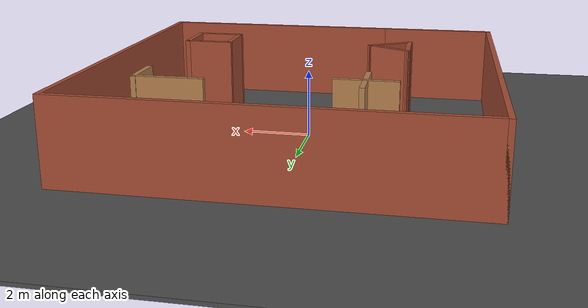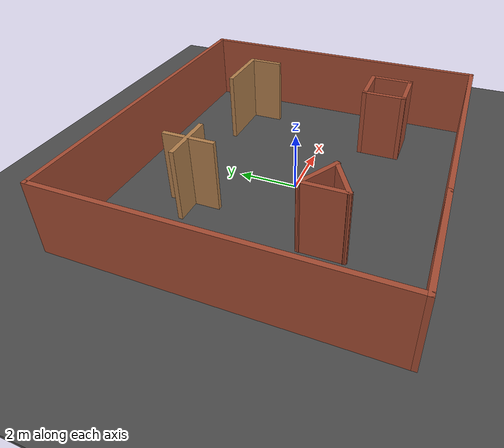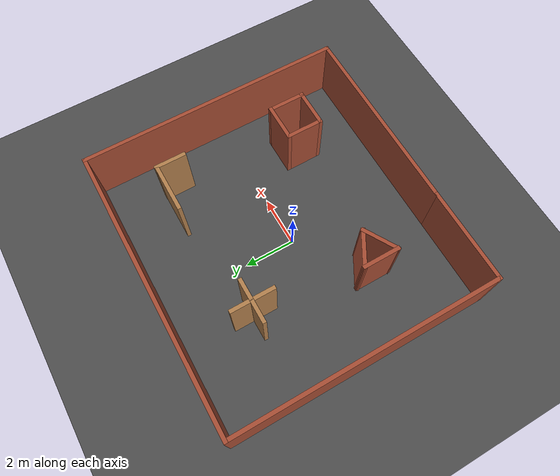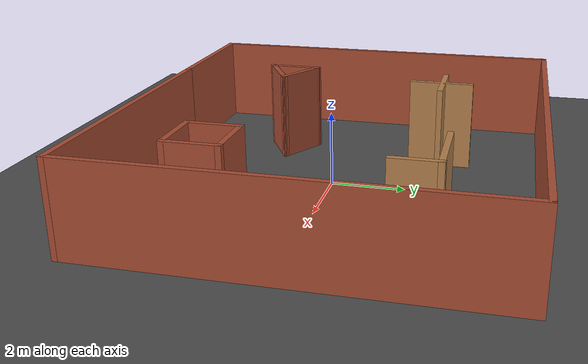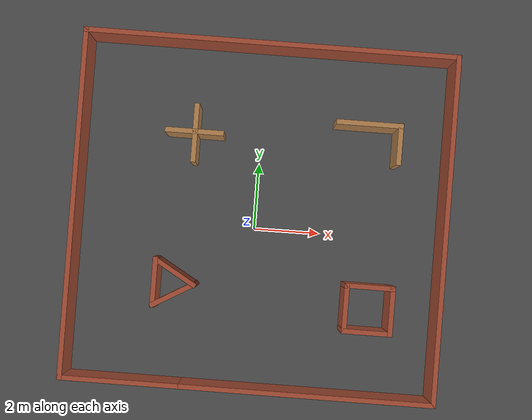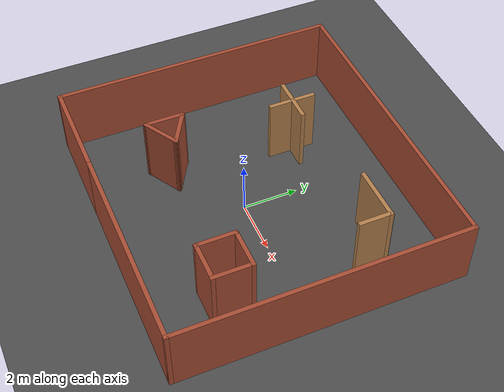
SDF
<sdf version="1.7">
 <world name="default">
  <light name="sun" type="directional">
   <pose>0 0 10 0 -0 0</pose>
   <diffuse>0.8 0.8 0.8 1</diffuse>
   <specular>0.2 0.2 0.2 1</specular>
   <attenuation>
    <range>1000</range>
    <constant>0.9</constant>
    <linear>0.01</linear>
    <quadratic>0.001</quadratic>
   </attenuation>
   <direction>-0.5 0.1 -0.9</direction>
   <spot><inner_angle>0</inner_angle><outer_angle>0</outer_angle><falloff>0</falloff></spot>
  </light>
  <model name="ground_plane">
   <static>1</static>
   <link name="link">
    <collision name="collision">
     <geometry><plane><normal>0 0 1</normal><size>100 100</size></plane></geometry>
     <surface><friction><ode><mu>100</mu><mu2>50</mu2></ode></friction></surface>
    </collision>
    <visual name="visual">
     <cast_shadows>0</cast_shadows>
     <geometry><plane><normal>0 0 1</normal><size>100 100</size></plane></geometry>
     <material>
      <script><uri>file://media/materials/scripts/gazebo.material</uri><name>Gazebo/Grey</name></script>
     </material>
    </visual>
    <velocity_decay><linear>0</linear><angular>0</angular></velocity_decay>
   </link>
  </model>
  <physics type="ode">
   <max_step_size>0.01</max_step_size>
   <real_time_factor>1</real_time_factor>
   <real_time_update_rate>100</real_time_update_rate>
  </physics>
  <scene><ambient>0.4 0.4 0.4 1</ambient><background>0.7 0.7 0.7 1</background><shadows>1</shadows></scene>
  <model name="asphalt_plane">
   <static>1</static>
   <link name="link">
    <collision name="collision"><geometry><box><size>540.158 701.678 0.1</size></box></geometry></collision>
    <visual name="visual">
     <cast_shadows>0</cast_shadows>
     <geometry><box><size>540.158 701.678 0.1</size></box></geometry>
     <material>
      <script>
       <uri>model://asphalt_plane/materials/scripts</uri>
       <uri>model://asphalt_plane/materials/textures</uri>
       <name>vrc/asphalt</name>
      </script>
     </material>
    </visual>
    <velocity_decay><linear>0</linear><angular>0</angular></velocity_decay>
   </link>
   <pose>0.207426 0.166822 0 0 -0 0</pose>
  </model>
  <gravity>0 0 -9.8</gravity>
  <magnetic_field>6e-06 2.3e-05 -4.2e-05</magnetic_field>
  <atmosphere type="adiabatic"/>
  <spherical_coordinates>
   <surface_model>EARTH_WGS84</surface_model>
   <latitude_deg>0</latitude_deg>
   <longitude_deg>0</longitude_deg>
   <elevation>0</elevation>
   <heading_deg>0</heading_deg>
  </spherical_coordinates>
  <model name="TCC_great_minor_wall_0">
   <pose>0.13 0.335 0 0 -0 0</pose>
   <link name="Wall_2">
    <collision name="Wall_2_Collision">
     <geometry><box><size>3.75 0.15 2.5</size></box></geometry>
     <pose>0 0 1.25 0 -0 0</pose>
    </collision>
    <visual name="Wall_2_Visual">
     <pose>0 0 1.25 0 -0 0</pose>
     <geometry><box><size>3.75 0.15 2.5</size></box></geometry>
     <material>
      <script><uri>file://media/materials/scripts/gazebo.material</uri><name>Gazebo/Bricks</name></script>
      <ambient>1 1 1 1</ambient>
     </material>
     <meta><layer>0</layer></meta>
    </visual>
    <pose>-3.75 -5.175 0 0 -0 3.14159</pose>
   </link>
   <link name="Wall_4">
    <collision name="Wall_4_Collision">
     <geometry><box><size>10.5 0.15 2.5</size></box></geometry>
     <pose>0 0 1.25 0 -0 0</pose>
    </collision>
    <visual name="Wall_4_Visual">
     <pose>0 0 1.25 0 -0 0</pose>
     <geometry><box><size>10.5 0.15 2.5</size></box></geometry>
     <material>
      <script><uri>file://media/materials/scripts/gazebo.material</uri><name>Gazebo/Bricks</name></script>
      <ambient>1 1 1 1</ambient>
     </material>
     <meta><layer>0</layer></meta>
    </visual>
    <pose>-5.55 -0 0 0 -0 1.5708</pose>
   </link>
   <link name="Wall_5">
    <collision name="Wall_5_Collision">
     <geometry><box><size>11.25 0.15 2.5</size></box></geometry>
     <pose>0 0 1.25 0 -0 0</pose>
    </collision>
    <visual name="Wall_5_Visual">
     <pose>0 0 1.25 0 -0 0</pose>
     <geometry><box><size>11.25 0.15 2.5</size></box></geometry>
     <material>
      <script><uri>file://media/materials/scripts/gazebo.material</uri><name>Gazebo/Bricks</name></script>
      <ambient>1 1 1 1</ambient>
     </material>
     <meta><layer>0</layer></meta>
    </visual>
    <pose>0 5.175 0 0 -0 0</pose>
   </link>
   <link name="Wall_6">
    <collision name="Wall_6_Collision">
     <geometry><box><size>10.5 0.15 2.5</size></box></geometry>
     <pose>0 0 1.25 0 -0 0</pose>
    </collision>
    <visual name="Wall_6_Visual">
     <pose>0 0 1.25 0 -0 0</pose>
     <geometry><box><size>10.5 0.15 2.5</size></box></geometry>
     <material>
      <script><uri>file://media/materials/scripts/gazebo.material</uri><name>Gazebo/Bricks</name></script>
      <ambient>1 1 1 1</ambient>
     </material>
     <meta><layer>0</layer></meta>
    </visual>
    <pose>5.55 -0 0 0 -0 -1.5708</pose>
   </link>
   <link name="Wall_8">
    <collision name="Wall_8_Collision">
     <geometry><box><size>7.65 0.15 2.5</size></box></geometry>
     <pose>0 0 1.25 0 -0 0</pose>
    </collision>
    <visual name="Wall_8_Visual">
     <pose>0 0 1.25 0 -0 0</pose>
     <geometry><box><size>7.65 0.15 2.5</size></box></geometry>
     <material>
      <script><uri>file://media/materials/scripts/gazebo.material</uri><name>Gazebo/Bricks</name></script>
      <ambient>1 1 1 1</ambient>
     </material>
     <meta><layer>0</layer></meta>
    </visual>
    <pose>1.8 -5.175 0 0 -0 0</pose>
   </link>
   <static>1</static>
  </model>
  <model name="TCC_great_minor_obstacles">
   <pose>0.683501 0.329612 0 0 -0 0</pose>
   <link name="Wall_17">
    <collision name="Wall_17_Collision">
     <geometry><box><size>1.75 0.15 2.5</size></box></geometry>
     <pose>0 0 1.25 0 -0 0</pose>
    </collision>
    <visual name="Wall_17_Visual">
     <pose>0 0 1.25 0 -0 0</pose>
     <geometry><box><size>1.75 0.15 2.5</size></box></geometry>
     <material>
      <script><uri>file://media/materials/scripts/gazebo.material</uri><name>Gazebo/Wood</name></script>
      <ambient>1 1 1 1</ambient>
     </material>
     <meta><layer>0</layer></meta>
    </visual>
    <pose>-2.64799 2.3632 0 0 -0 1.5708</pose>
   </link>
   <link name="Wall_19">
    <collision name="Wall_19_Collision">
     <geometry><box><size>1.75 0.15 2.5</size></box></geometry>
     <pose>0 0 1.25 0 -0 0</pose>
    </collision>
    <visual name="Wall_19_Visual">
     <pose>0 0 1.25 0 -0 0</pose>
     <geometry><box><size>1.75 0.15 2.5</size></box></geometry>
     <material>
      <script><uri>file://media/materials/scripts/gazebo.material</uri><name>Gazebo/Wood</name></script>
      <ambient>1 1 1 1</ambient>
     </material>
     <meta><layer>0</layer></meta>
    </visual>
    <pose>-2.66926 2.39968 0 0 -0 0</pose>
   </link>
   <link name="Wall_28">
    <collision name="Wall_28_Collision">
     <geometry><box><size>1.25 0.15 2.5</size></box></geometry>
     <pose>0 0 1.25 0 -0 0</pose>
    </collision>
    <visual name="Wall_28_Visual">
     <pose>0 0 1.25 0 -0 0</pose>
     <geometry><box><size>1.25 0.15 2.5</size></box></geometry>
     <material>
      <script><uri>file://media/materials/scripts/gazebo.material</uri><name>Gazebo/Wood</name></script>
      <ambient>1 1 1 1</ambient>
     </material>
     <meta><layer>0</layer></meta>
    </visual>
    <pose>3.43551 2.47821 0 0 -0 1.5708</pose>
   </link>
   <link name="Wall_29">
    <collision name="Wall_29_Collision">
     <geometry><box><size>2 0.15 2.5</size></box></geometry>
     <pose>0 0 1.25 0 -0 0</pose>
    </collision>
    <visual name="Wall_29_Visual">
     <pose>0 0 1.25 0 -0 0</pose>
     <geometry><box><size>2 0.15 2.5</size></box></geometry>
     <material>
      <script><uri>file://media/materials/scripts/gazebo.material</uri><name>Gazebo/Wood</name></script>
      <ambient>1 1 1 1</ambient>
     </material>
     <meta><layer>0</layer></meta>
    </visual>
    <pose>2.51051 3.013 0 0 -0 3.14159</pose>
   </link>
   <link name="Wall_32">
    <collision name="Wall_32_Collision">
     <geometry><box><size>1.5 0.15 2.5</size></box></geometry>
     <pose>0 0 1.25 0 -0 0</pose>
    </collision>
    <visual name="Wall_32_Visual">
     <pose>0 0 1.25 0 -0 0</pose>
     <geometry><box><size>1.5 0.15 2.5</size></box></geometry>
     <material>
      <script><uri>file://media/materials/scripts/gazebo.material</uri><name>Gazebo/Bricks</name></script>
      <ambient>1 1 1 1</ambient>
     </material>
     <meta><layer>0</layer></meta>
    </visual>
    <pose>3.5575 -2.48819 0 0 -0 -1.5708</pose>
   </link>
   <link name="Wall_33">
    <collision name="Wall_33_Collision">
     <geometry><box><size>1.51561 0.15 2.5</size></box></geometry>
     <pose>0 0 1.25 0 -0 0</pose>
    </collision>
    <visual name="Wall_33_Visual">
     <pose>0 0 1.25 0 -0 0</pose>
     <geometry><box><size>1.51561 0.15 2.5</size></box></geometry>
     <material>
      <script><uri>file://media/materials/scripts/gazebo.material</uri><name>Gazebo/Bricks</name></script>
      <ambient>1 1 1 1</ambient>
     </material>
     <meta><layer>0</layer></meta>
    </visual>
    <pose>2.87474 -3.16317 0 0 -0 3.14156</pose>
   </link>
   <link name="Wall_34">
    <collision name="Wall_34_Collision">
     <geometry><box><size>1.5 0.15 2.5</size></box></geometry>
     <pose>0 0 1.25 0 -0 0</pose>
    </collision>
    <visual name="Wall_34_Visual">
     <pose>0 0 1.25 0 -0 0</pose>
     <geometry><box><size>1.5 0.15 2.5</size></box></geometry>
     <material>
      <script><uri>file://media/materials/scripts/gazebo.material</uri><name>Gazebo/Bricks</name></script>
      <ambient>1 1 1 1</ambient>
     </material>
     <meta><layer>0</layer></meta>
    </visual>
    <pose>2.19197 -2.48815 0 0 -0 1.5708</pose>
   </link>
   <link name="Wall_35">
    <collision name="Wall_35_Collision">
     <geometry><box><size>1.51561 0.15 2.5</size></box></geometry>
     <pose>0 0 1.25 0 -0 0</pose>
    </collision>
    <visual name="Wall_35_Visual">
     <pose>0 0 1.25 0 -0 0</pose>
     <geometry><box><size>1.51561 0.15 2.5</size></box></geometry>
     <material>
      <script><uri>file://media/materials/scripts/gazebo.material</uri><name>Gazebo/Bricks</name></script>
      <ambient>1 1 1 1</ambient>
     </material>
     <meta><layer>0</layer></meta>
    </visual>
    <pose>2.87474 -1.81317 0 0 -0 -3.6e-05</pose>
   </link>
   <link name="Wall_38">
    <collision name="Wall_38_Collision">
     <geometry><box><size>1.5 0.15 2.5</size></box></geometry>
     <pose>0 0 1.25 0 -0 0</pose>
    </collision>
    <visual name="Wall_38_Visual">
     <pose>0 0 1.25 0 -0 0</pose>
     <geometry><box><size>1.5 0.15 2.5</size></box></geometry>
     <material>
      <script><uri>file://media/materials/scripts/gazebo.material</uri><name>Gazebo/Bricks</name></script>
      <ambient>1 1 1 1</ambient>
     </material>
     <meta><layer>0</layer></meta>
    </visual>
    <pose>-3.53009 -2.14192 0 0 -0 1.5708</pose>
   </link>
   <link name="Wall_39">
    <collision name="Wall_39_Collision">
     <geometry><box><size>1.5 0.15 2.5</size></box></geometry>
     <pose>0 0 1.25 0 -0 0</pose>
    </collision>
    <visual name="Wall_39_Visual">
     <pose>0 0 1.25 0 -0 0</pose>
     <geometry><box><size>1.5 0.15 2.5</size></box></geometry>
     <material>
      <script><uri>file://media/materials/scripts/gazebo.material</uri><name>Gazebo/Bricks</name></script>
      <ambient>1 1 1 1</ambient>
     </material>
     <meta><layer>0</layer></meta>
    </visual>
    <pose>-2.94553 -1.80442 0 0 -0 -0.523599</pose>
   </link>
   <link name="Wall_40">
    <collision name="Wall_40_Collision">
     <geometry><box><size>1.5 0.15 2.5</size></box></geometry>
     <pose>0 0 1.25 0 -0 0</pose>
    </collision>
    <visual name="Wall_40_Visual">
     <pose>0 0 1.25 0 -0 0</pose>
     <geometry><box><size>1.5 0.15 2.5</size></box></geometry>
     <material>
      <script><uri>file://media/materials/scripts/gazebo.material</uri><name>Gazebo/Bricks</name></script>
      <ambient>1 1 1 1</ambient>
     </material>
     <meta><layer>0</layer></meta>
    </visual>
    <pose>-2.94553 -2.47942 0 0 -0 -2.61799</pose>
   </link>
   <static>1</static>
  </model>
 </world>
</sdf>
